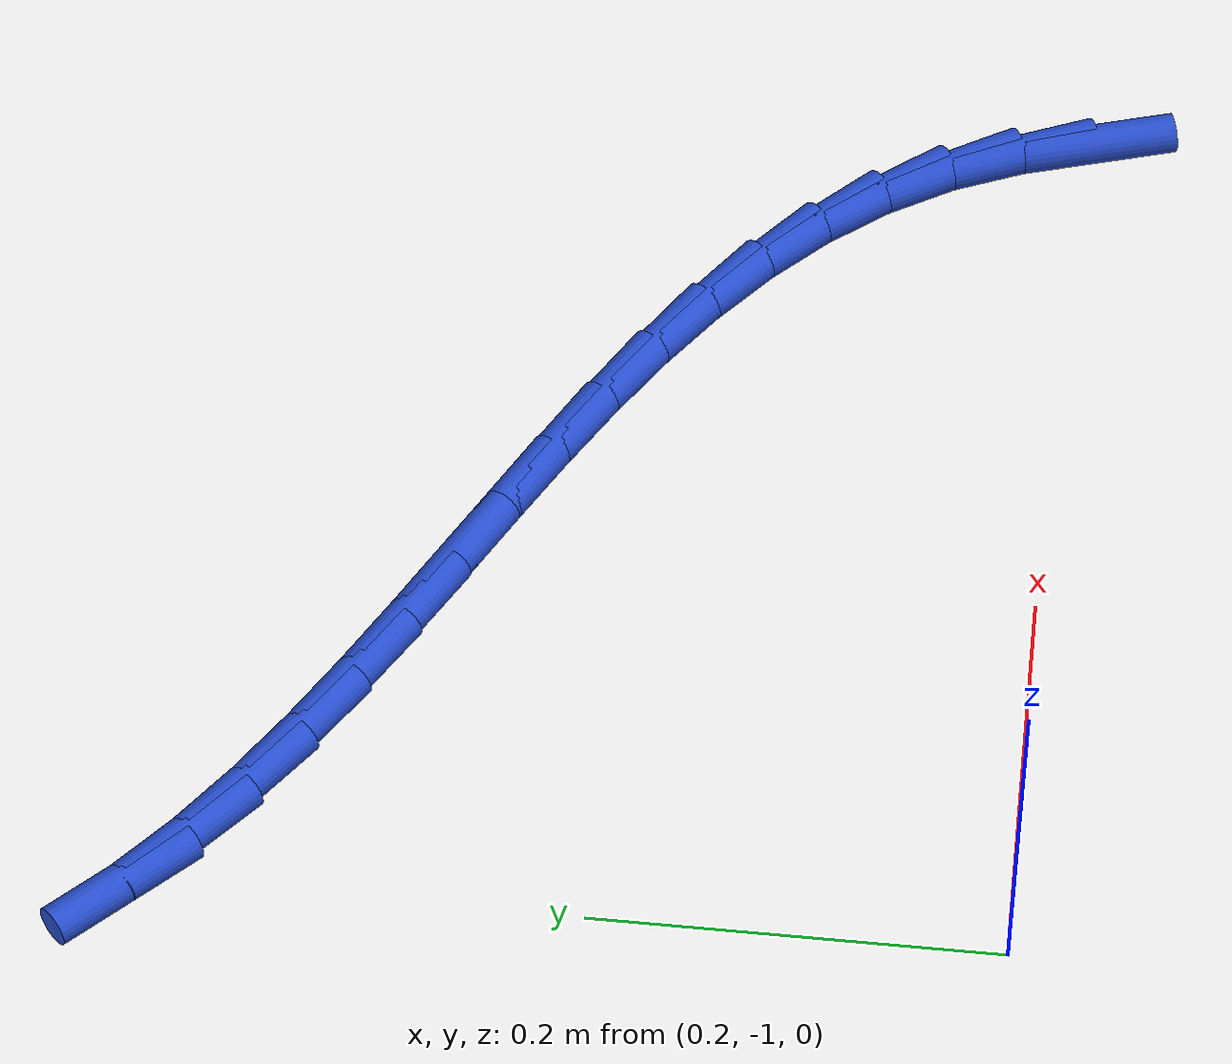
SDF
<sdf version="1.6">
 <world name="default">
  <model name="ground_plane">
   <static>1</static>
   <link name="link">
    <collision name="collision">
     <geometry><plane><normal>0 0 1</normal><size>100 100</size></plane></geometry>
     <surface><friction><ode><mu>100</mu><mu2>50</mu2></ode></friction></surface>
    </collision>
    <visual name="visual">
     <cast_shadows>0</cast_shadows>
     <geometry><plane><normal>0 0 1</normal><size>100 100</size></plane></geometry>
     <material>
      <script><uri>file://media/materials/scripts/gazebo.material</uri><name>Gazebo/WhiteGlow</name></script>
     </material>
    </visual>
   </link>
  </model>
  <model name="line">
   <link name="link_177">
    <pose>0.6825702649013754 -1.0117480980698486 0.01 0 1.57 -1.289183593395125</pose>
    <collision name="collision">
     <geometry><cylinder><radius>0.01</radius><length>0.08</length></cylinder></geometry>
    </collision>
    <visual name="visual">
     <material>
      <script><name>Gazebo/Blue</name><uri>file://media/materials/scripts/gazebo.material</uri></script>
     </material>
     <geometry><cylinder><radius>0.01</radius><length>0.08</length></cylinder></geometry>
    </visual>
   </link>
   <link name="link_178">
    <pose>0.671497374774515 -0.9734734928435863 0.01 0 1.57 -1.1812607599073273</pose>
    <collision name="collision">
     <geometry><cylinder><radius>0.01</radius><length>0.08</length></cylinder></geometry>
    </collision>
    <visual name="visual">
     <material>
      <script><name>Gazebo/Blue</name><uri>file://media/materials/scripts/gazebo.material</uri></script>
     </material>
     <geometry><cylinder><radius>0.01</radius><length>0.08</length></cylinder></geometry>
    </visual>
   </link>
   <link name="link_179">
    <pose>0.6568607470465252 -0.9378189352930529 0.01 0 1.57 -1.0473887829742825</pose>
    <collision name="collision">
     <geometry><cylinder><radius>0.01</radius><length>0.08</length></cylinder></geometry>
    </collision>
    <visual name="visual">
     <material>
      <script><name>Gazebo/Blue</name><uri>file://media/materials/scripts/gazebo.material</uri></script>
     </material>
     <geometry><cylinder><radius>0.01</radius><length>0.08</length></cylinder></geometry>
    </visual>
   </link>
   <link name="link_180">
    <pose>0.6380834996046262 -0.9052814207125733 0.01 0 1.57 -0.9218117825718776</pose>
    <collision name="collision">
     <geometry><cylinder><radius>0.01</radius><length>0.08</length></cylinder></geometry>
    </collision>
    <visual name="visual">
     <material>
      <script><name>Gazebo/Blue</name><uri>file://media/materials/scripts/gazebo.material</uri></script>
     </material>
     <geometry><cylinder><radius>0.01</radius><length>0.08</length></cylinder></geometry>
    </visual>
   </link>
   <link name="link_181">
    <pose>0.615544567810312 -0.8755703309694409 0.01 0 1.57 -0.811969639195068</pose>
    <collision name="collision">
     <geometry><cylinder><radius>0.01</radius><length>0.08</length></cylinder></geometry>
    </collision>
    <visual name="visual">
     <material>
      <script><name>Gazebo/Blue</name><uri>file://media/materials/scripts/gazebo.material</uri></script>
     </material>
     <geometry><cylinder><radius>0.01</radius><length>0.08</length></cylinder></geometry>
    </visual>
   </link>
   <link name="link_182">
    <pose>0.5897090655982625 -0.8483240349988863 0.01 0 1.57 -0.7200052052134714</pose>
    <collision name="collision">
     <geometry><cylinder><radius>0.01</radius><length>0.08</length></cylinder></geometry>
    </collision>
    <visual name="visual">
     <material>
      <script><name>Gazebo/Blue</name><uri>file://media/materials/scripts/gazebo.material</uri></script>
     </material>
     <geometry><cylinder><radius>0.01</radius><length>0.08</length></cylinder></geometry>
    </visual>
   </link>
   <link name="link_183">
    <pose>0.561042106903157 -0.8231809017361408 0.01 0 1.57 -0.6461074007994707</pose>
    <collision name="collision">
     <geometry><cylinder><radius>0.01</radius><length>0.08</length></cylinder></geometry>
    </collision>
    <visual name="visual">
     <material>
      <script><name>Gazebo/Blue</name><uri>file://media/materials/scripts/gazebo.material</uri></script>
     </material>
     <geometry><cylinder><radius>0.01</radius><length>0.08</length></cylinder></geometry>
    </visual>
   </link>
   <link name="link_184">
    <pose>0.5300088056596765 -0.7997793001164362 0.01 0 1.57 -0.5893750040762339</pose>
    <collision name="collision">
     <geometry><cylinder><radius>0.01</radius><length>0.08</length></cylinder></geometry>
    </collision>
    <visual name="visual">
     <material>
      <script><name>Gazebo/Blue</name><uri>file://media/materials/scripts/gazebo.material</uri></script>
     </material>
     <geometry><cylinder><radius>0.01</radius><length>0.08</length></cylinder></geometry>
    </visual>
   </link>
   <link name="link_185">
    <pose>0.4970742758025 -0.7777575990750031 0.01 0 1.57 -0.5485313699369296</pose>
    <collision name="collision">
     <geometry><cylinder><radius>0.01</radius><length>0.08</length></cylinder></geometry>
    </collision>
    <visual name="visual">
     <material>
      <script><name>Gazebo/Blue</name><uri>file://media/materials/scripts/gazebo.material</uri></script>
     </material>
     <geometry><cylinder><radius>0.01</radius><length>0.08</length></cylinder></geometry>
    </visual>
   </link>
   <link name="link_186">
    <pose>0.46270363126630754 -0.7567541675470734 0.01 0 1.57 -0.5223731079174737</pose>
    <collision name="collision">
     <geometry><cylinder><radius>0.01</radius><length>0.08</length></cylinder></geometry>
    </collision>
    <visual name="visual">
     <material>
      <script><name>Gazebo/Blue</name><uri>file://media/materials/scripts/gazebo.material</uri></script>
     </material>
     <geometry><cylinder><radius>0.01</radius><length>0.08</length></cylinder></geometry>
    </visual>
   </link>
   <link name="link_187">
    <pose>0.4273619859857788 -0.7364073744678776 0.01 0 1.57 -0.5100033186152494</pose>
    <collision name="collision">
     <geometry><cylinder><radius>0.01</radius><length>0.08</length></cylinder></geometry>
    </collision>
    <visual name="visual">
     <material>
      <script><name>Gazebo/Blue</name><uri>file://media/materials/scripts/gazebo.material</uri></script>
     </material>
     <geometry><cylinder><radius>0.01</radius><length>0.08</length></cylinder></geometry>
    </visual>
   </link>
   <link name="link_188">
    <pose>0.3915144538955936 -0.7163555887726472 0.01 0 1.57 -0.5109327873102801</pose>
    <collision name="collision">
     <geometry><cylinder><radius>0.01</radius><length>0.08</length></cylinder></geometry>
    </collision>
    <visual name="visual">
     <material>
      <script><name>Gazebo/Blue</name><uri>file://media/materials/scripts/gazebo.material</uri></script>
     </material>
     <geometry><cylinder><radius>0.01</radius><length>0.08</length></cylinder></geometry>
    </visual>
   </link>
   <link name="link_189">
    <pose>0.35562614893043093 -0.696237179396613 0.01 0 1.57 -0.5251102930322759</pose>
    <collision name="collision">
     <geometry><cylinder><radius>0.01</radius><length>0.08</length></cylinder></geometry>
    </collision>
    <visual name="visual">
     <material>
      <script><name>Gazebo/Blue</name><uri>file://media/materials/scripts/gazebo.material</uri></script>
     </material>
     <geometry><cylinder><radius>0.01</radius><length>0.08</length></cylinder></geometry>
    </visual>
   </link>
   <link name="link_190">
    <pose>0.32016218502497235 -0.6756905152750072 0.01 0 1.57 -0.5529112327565451</pose>
    <collision name="collision">
     <geometry><cylinder><radius>0.01</radius><length>0.08</length></cylinder></geometry>
    </collision>
    <visual name="visual">
     <material>
      <script><name>Gazebo/Blue</name><uri>file://media/materials/scripts/gazebo.material</uri></script>
     </material>
     <geometry><cylinder><radius>0.01</radius><length>0.08</length></cylinder></geometry>
    </visual>
   </link>
   <link name="link_191">
    <pose>0.28558767611389657 -0.6543539653430603 0.01 0 1.57 -0.595084544844468</pose>
    <collision name="collision">
     <geometry><cylinder><radius>0.01</radius><length>0.08</length></cylinder></geometry>
    </collision>
    <visual name="visual">
     <material>
      <script><name>Gazebo/Blue</name><uri>file://media/materials/scripts/gazebo.material</uri></script>
     </material>
     <geometry><cylinder><radius>0.01</radius><length>0.08</length></cylinder></geometry>
    </visual>
   </link>
   <link name="link_192">
    <pose>0.25236773613188374 -0.6318658985360037 0.01 0 1.57 -0.6526306373885999</pose>
    <collision name="collision">
     <geometry><cylinder><radius>0.01</radius><length>0.08</length></cylinder></geometry>
    </collision>
    <visual name="visual">
     <material>
      <script><name>Gazebo/Blue</name><uri>file://media/materials/scripts/gazebo.material</uri></script>
     </material>
     <geometry><cylinder><radius>0.01</radius><length>0.08</length></cylinder></geometry>
    </visual>
   </link>
   <link name="link_193">
    <pose>0.2209674790136135 -0.6078646837890688 0.01 0 1.57 -0.7265576182838007</pose>
    <collision name="collision">
     <geometry><cylinder><radius>0.01</radius><length>0.08</length></cylinder></geometry>
    </collision>
    <visual name="visual">
     <material>
      <script><name>Gazebo/Blue</name><uri>file://media/materials/scripts/gazebo.material</uri></script>
     </material>
     <geometry><cylinder><radius>0.01</radius><length>0.08</length></cylinder></geometry>
    </visual>
   </link>
   <link name="link_194">
    <pose>0.19185201869376567 -0.5819886900374868 0.01 0 1.57 -0.8173021437911109</pose>
    <collision name="collision">
     <geometry><cylinder><radius>0.01</radius><length>0.08</length></cylinder></geometry>
    </collision>
    <visual name="visual">
     <material>
      <script><name>Gazebo/Blue</name><uri>file://media/materials/scripts/gazebo.material</uri></script>
     </material>
     <geometry><cylinder><radius>0.01</radius><length>0.08</length></cylinder></geometry>
    </visual>
   </link>
  </model>
 </world>
</sdf>
